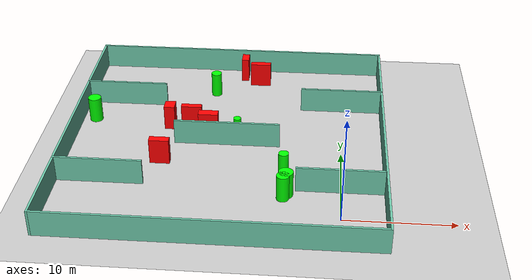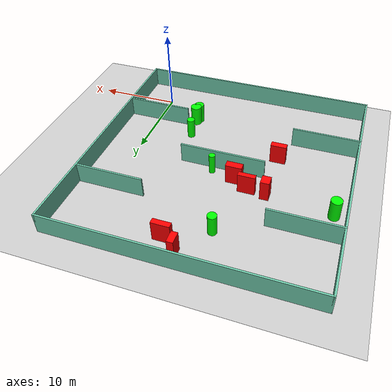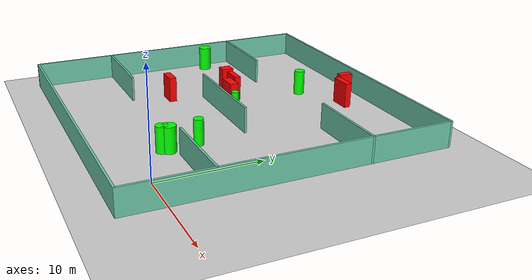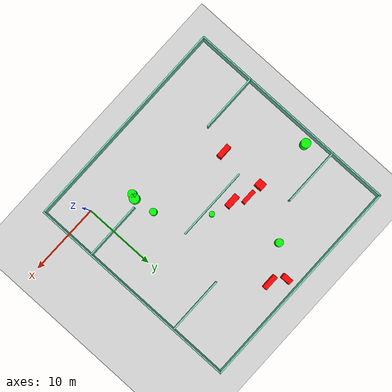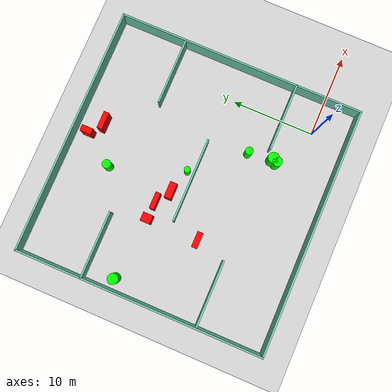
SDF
<sdf version="1.7">
 <world name="default">
  <light name="sun" type="directional">
   <pose>0 0 10 0 -0 0</pose>
   <diffuse>0.8 0.8 0.8 1</diffuse>
   <specular>0.2 0.2 0.2 1</specular>
   <attenuation>
    <range>1000</range>
    <constant>0.9</constant>
    <linear>0.01</linear>
    <quadratic>0.001</quadratic>
   </attenuation>
   <direction>-0.5 0.1 -0.9</direction>
   <spot><inner_angle>0</inner_angle><outer_angle>0</outer_angle><falloff>0</falloff></spot>
  </light>
  <model name="ground_plane">
   <static>1</static>
   <link name="link">
    <collision name="collision">
     <geometry><plane><normal>0 0 1</normal><size>100 100</size></plane></geometry>
     <surface>
      <contact><collide_bitmask>65535</collide_bitmask></contact>
      <friction><ode><mu>100</mu><mu2>50</mu2></ode></friction>
     </surface>
    </collision>
    <visual name="visual">
     <cast_shadows>0</cast_shadows>
     <geometry><plane><normal>0 0 1</normal><size>100 100</size></plane></geometry>
     <material>
      <script><uri>file://media/materials/scripts/gazebo.material</uri><name>Gazebo/Grey</name></script>
     </material>
    </visual>
   </link>
  </model>
  <gravity>0 0 -9.8</gravity>
  <magnetic_field>6e-06 2.3e-05 -4.2e-05</magnetic_field>
  <atmosphere type="adiabatic"/>
  <physics type="ode">
   <max_step_size>0.001</max_step_size>
   <real_time_factor>1</real_time_factor>
   <real_time_update_rate>1000</real_time_update_rate>
  </physics>
  <scene><ambient>0.4 0.4 0.4 1</ambient><background>0.7 0.7 0.7 1</background><shadows>1</shadows></scene>
  <spherical_coordinates>
   <surface_model>EARTH_WGS84</surface_model>
   <latitude_deg>0</latitude_deg>
   <longitude_deg>0</longitude_deg>
   <elevation>0</elevation>
   <heading_deg>0</heading_deg>
  </spherical_coordinates>
  <model name="my_base_walls">
   <link name="Wall_10">
    <collision name="Wall_10_Collision">
     <geometry><box><size>8.2 0.2 2.5</size></box></geometry>
     <pose>0 0 1.25 0 -0 0</pose>
    </collision>
    <visual name="Wall_10_Visual">
     <pose>0 0 1.25 0 -0 0</pose>
     <geometry><box><size>8.2 0.2 2.5</size></box></geometry>
     <material>
      <script><uri>file://media/materials/scripts/gazebo.material</uri><name>Gazebo/Grey</name></script>
      <ambient>0.435294 0.796078 0.67451 1</ambient>
     </material>
     <meta><layer>0</layer></meta>
    </visual>
    <pose>-11 -7 0 0 -0 0</pose>
   </link>
   <link name="Wall_12">
    <collision name="Wall_12_Collision">
     <geometry><box><size>8.2 0.2 2.5</size></box></geometry>
     <pose>0 0 1.25 0 -0 0</pose>
    </collision>
    <visual name="Wall_12_Visual">
     <pose>0 0 1.25 0 -0 0</pose>
     <geometry><box><size>8.2 0.2 2.5</size></box></geometry>
     <material>
      <script><uri>file://media/materials/scripts/gazebo.material</uri><name>Gazebo/Grey</name></script>
      <ambient>0.435294 0.796078 0.67451 1</ambient>
     </material>
     <meta><layer>0</layer></meta>
    </visual>
    <pose>-11 7 0 0 -0 0</pose>
   </link>
   <link name="Wall_14">
    <collision name="Wall_14_Collision">
     <geometry><box><size>8.2 0.2 2.5</size></box></geometry>
     <pose>0 0 1.25 0 -0 0</pose>
    </collision>
    <visual name="Wall_14_Visual">
     <pose>0 0 1.25 0 -0 0</pose>
     <geometry><box><size>8.2 0.2 2.5</size></box></geometry>
     <material>
      <script><uri>file://media/materials/scripts/gazebo.material</uri><name>Gazebo/Grey</name></script>
      <ambient>0.435294 0.796078 0.67451 1</ambient>
     </material>
     <meta><layer>0</layer></meta>
    </visual>
    <pose>11 7 0 0 -0 3.14159</pose>
   </link>
   <link name="Wall_16">
    <collision name="Wall_16_Collision">
     <geometry><box><size>10.2 0.2 2.5</size></box></geometry>
     <pose>0 0 1.25 0 -0 0</pose>
    </collision>
    <visual name="Wall_16_Visual">
     <pose>0 0 1.25 0 -0 0</pose>
     <geometry><box><size>10.2 0.2 2.5</size></box></geometry>
     <material>
      <script><uri>file://media/materials/scripts/gazebo.material</uri><name>Gazebo/Grey</name></script>
      <ambient>0.435294 0.796078 0.67451 1</ambient>
     </material>
     <meta><layer>0</layer></meta>
    </visual>
    <pose>0 0 0 0 -0 3.14159</pose>
   </link>
   <link name="Wall_2">
    <collision name="Wall_2_Collision">
     <geometry><box><size>30.2 0.2 2.5</size></box></geometry>
     <pose>0 0 1.25 0 -0 0</pose>
    </collision>
    <visual name="Wall_2_Visual">
     <pose>0 0 1.25 0 -0 0</pose>
     <geometry><box><size>30.2 0.2 2.5</size></box></geometry>
     <material>
      <script><uri>file://media/materials/scripts/gazebo.material</uri><name>Gazebo/Grey</name></script>
      <ambient>0.435294 0.796078 0.67451 1</ambient>
     </material>
     <meta><layer>0</layer></meta>
    </visual>
    <pose>0 -15 0 0 -0 3.14159</pose>
   </link>
   <link name="Wall_3">
    <collision name="Wall_3_Collision">
     <geometry><box><size>30.2 0.2 2.5</size></box></geometry>
     <pose>0 0 1.25 0 -0 0</pose>
    </collision>
    <visual name="Wall_3_Visual">
     <pose>0 0 1.25 0 -0 0</pose>
     <geometry><box><size>30.2 0.2 2.5</size></box></geometry>
     <material>
      <script><uri>file://media/materials/scripts/gazebo.material</uri><name>Gazebo/Grey</name></script>
      <ambient>0.435294 0.796078 0.67451 1</ambient>
     </material>
     <meta><layer>0</layer></meta>
    </visual>
    <pose>-15 0 0 0 -0 1.5708</pose>
   </link>
   <link name="Wall_4">
    <collision name="Wall_4_Collision">
     <geometry><box><size>30.2 0.2 2.5</size></box></geometry>
     <pose>0 0 1.25 0 -0 0</pose>
    </collision>
    <visual name="Wall_4_Visual">
     <pose>0 0 1.25 0 -0 0</pose>
     <geometry><box><size>30.2 0.2 2.5</size></box></geometry>
     <material>
      <script><uri>file://media/materials/scripts/gazebo.material</uri><name>Gazebo/Grey</name></script>
      <ambient>0.435294 0.796078 0.67451 1</ambient>
     </material>
     <meta><layer>0</layer></meta>
    </visual>
    <pose>0 15 0 0 -0 0</pose>
   </link>
   <link name="Wall_6">
    <collision name="Wall_6_Collision">
     <geometry><box><size>30.2 0.2 2.5</size></box></geometry>
     <pose>0 0 1.25 0 -0 0</pose>
    </collision>
    <visual name="Wall_6_Visual">
     <pose>0 0 1.25 0 -0 0</pose>
     <geometry><box><size>30.2 0.2 2.5</size></box></geometry>
     <material>
      <script><uri>file://media/materials/scripts/gazebo.material</uri><name>Gazebo/Grey</name></script>
      <ambient>0.435294 0.796078 0.67451 1</ambient>
     </material>
     <meta><layer>0</layer></meta>
    </visual>
    <pose>15 0 0 0 -0 1.5708</pose>
   </link>
   <link name="Wall_8">
    <collision name="Wall_8_Collision">
     <geometry><box><size>8.2 0.2 2.5</size></box></geometry>
     <pose>0 0 1.25 0 -0 0</pose>
    </collision>
    <visual name="Wall_8_Visual">
     <pose>0 0 1.25 0 -0 0</pose>
     <geometry><box><size>8.2 0.2 2.5</size></box></geometry>
     <material>
      <script><uri>file://media/materials/scripts/gazebo.material</uri><name>Gazebo/Grey</name></script>
      <ambient>0.435294 0.796078 0.67451 1</ambient>
     </material>
     <meta><layer>0</layer></meta>
    </visual>
    <pose>11 -7 0 0 -0 3.14159</pose>
   </link>
   <static>1</static>
   <pose>-11 11 0 0 -0 0</pose>
  </model>
  <model name="cylinder1">
   <static>1</static>
   <link name="link">
    <inertial>
     <mass>1</mass>
     <inertia><ixx>0.5</ixx><ixy>0</ixy><ixz>0</ixz><iyy>0.5</iyy><iyz>0</iyz><izz>1</izz></inertia>
    </inertial>
    <collision name="collision">
     <geometry><cylinder><radius>0.6663168805476418</radius><length>2.5</length></cylinder></geometry>
    </collision>
    <visual name="visual">
     <geometry><cylinder><radius>0.6663168805476418</radius><length>2.5</length></cylinder></geometry>
     <material>
      <ambient>0 1 0 1</ambient>
      <diffuse>0 1 0 1</diffuse>
      <specular>0.1 0.1 0.1 1</specular>
      <emissive>0 0 0 0</emissive>
     </material>
    </visual>
   </link>
   <pose>-4.918134223908204 3.263608286651835 1.25 0 0 0</pose>
  </model>
  <model name="cylinder2">
   <static>1</static>
   <link name="link">
    <inertial>
     <mass>1</mass>
     <inertia><ixx>0.5</ixx><ixy>0</ixy><ixz>0</ixz><iyy>0.5</iyy><iyz>0</iyz><izz>1</izz></inertia>
    </inertial>
    <collision name="collision">
     <geometry><cylinder><radius>0.5843625810009649</radius><length>2.5</length></cylinder></geometry>
    </collision>
    <visual name="visual">
     <geometry><cylinder><radius>0.5843625810009649</radius><length>2.5</length></cylinder></geometry>
     <material>
      <ambient>0 1 0 1</ambient>
      <diffuse>0 1 0 1</diffuse>
      <specular>0.1 0.1 0.1 1</specular>
      <emissive>0 0 0 0</emissive>
     </material>
    </visual>
   </link>
   <pose>-5.155733701915022 2.701021524869957 1.25 0 0 0</pose>
  </model>
  <model name="cylinder3">
   <static>1</static>
   <link name="link">
    <inertial>
     <mass>1</mass>
     <inertia><ixx>0.5</ixx><ixy>0</ixy><ixz>0</ixz><iyy>0.5</iyy><iyz>0</iyz><izz>1</izz></inertia>
    </inertial>
    <collision name="collision">
     <geometry><cylinder><radius>0.5218208821092749</radius><length>2.5</length></cylinder></geometry>
    </collision>
    <visual name="visual">
     <geometry><cylinder><radius>0.5218208821092749</radius><length>2.5</length></cylinder></geometry>
     <material>
      <ambient>0 1 0 1</ambient>
      <diffuse>0 1 0 1</diffuse>
      <specular>0.1 0.1 0.1 1</specular>
      <emissive>0 0 0 0</emissive>
     </material>
    </visual>
   </link>
   <pose>-13.070138107066288 20.584232721863344 1.25 0 0 0</pose>
  </model>
  <model name="cylinder4">
   <static>1</static>
   <link name="link">
    <inertial>
     <mass>1</mass>
     <inertia><ixx>0.5</ixx><ixy>0</ixy><ixz>0</ixz><iyy>0.5</iyy><iyz>0</iyz><izz>1</izz></inertia>
    </inertial>
    <collision name="collision">
     <geometry><cylinder><radius>0.47039971694904403</radius><length>2.5</length></cylinder></geometry>
    </collision>
    <visual name="visual">
     <geometry><cylinder><radius>0.47039971694904403</radius><length>2.5</length></cylinder></geometry>
     <material>
      <ambient>0 1 0 1</ambient>
      <diffuse>0 1 0 1</diffuse>
      <specular>0.1 0.1 0.1 1</specular>
      <emissive>0 0 0 0</emissive>
     </material>
    </visual>
   </link>
   <pose>-5.2797449747721465 6.149358681977983 1.25 0 0 0</pose>
  </model>
  <model name="cylinder5">
   <static>1</static>
   <link name="link">
    <inertial>
     <mass>1</mass>
     <inertia><ixx>0.5</ixx><ixy>0</ixy><ixz>0</ixz><iyy>0.5</iyy><iyz>0</iyz><izz>1</izz></inertia>
    </inertial>
    <collision name="collision">
     <geometry><cylinder><radius>0.3663839702693539</radius><length>2.5</length></cylinder></geometry>
    </collision>
    <visual name="visual">
     <geometry><cylinder><radius>0.3663839702693539</radius><length>2.5</length></cylinder></geometry>
     <material>
      <ambient>0 1 0 1</ambient>
      <diffuse>0 1 0 1</diffuse>
      <specular>0.1 0.1 0.1 1</specular>
      <emissive>0 0 0 0</emissive>
     </material>
    </visual>
   </link>
   <pose>-10.04425713684865 11.840809439748416 1.25 0 0 0</pose>
  </model>
  <model name="cylinder6">
   <static>1</static>
   <link name="link">
    <inertial>
     <mass>1</mass>
     <inertia><ixx>0.5</ixx><ixy>0</ixy><ixz>0</ixz><iyy>0.5</iyy><iyz>0</iyz><izz>1</izz></inertia>
    </inertial>
    <collision name="collision">
     <geometry><cylinder><radius>0.6424250641443677</radius><length>2.5</length></cylinder></geometry>
    </collision>
    <visual name="visual">
     <geometry><cylinder><radius>0.6424250641443677</radius><length>2.5</length></cylinder></geometry>
     <material>
      <ambient>0 1 0 1</ambient>
      <diffuse>0 1 0 1</diffuse>
      <specular>0.1 0.1 0.1 1</specular>
      <emissive>0 0 0 0</emissive>
     </material>
    </visual>
   </link>
   <pose>-24.647321706572374 14.643339686053316 1.25 0 0 0</pose>
  </model>
  <model name="box1">
   <static>1</static>
   <link name="link">
    <inertial>
     <mass>1</mass>
     <inertia><ixx>0.083</ixx><ixy>0</ixy><ixz>0</ixz><iyy>0.083</iyy><iyz>0</iyz><izz>0.083</izz></inertia>
    </inertial>
    <collision name="collision">
     <geometry><box><size>2.0847182685409766 0.6261672505833762 2.5</size></box></geometry>
    </collision>
    <visual name="visual">
     <geometry><box><size>2.0847182685409766 0.6261672505833762 2.5</size></box></geometry>
     <material>
      <ambient>1 0 0 1</ambient>
      <diffuse>1 0 0 1</diffuse>
      <specular>0.1 0.1 0.1 1</specular>
      <emissive>0 0 0 0</emissive>
     </material>
    </visual>
    <sensor name="my_contact" type="contact">
     <contact><collision>box_collision</collision><topic>__default_topic__</topic></contact>
    </sensor>
   </link>
   <pose>-8.589920861682371 23.04347778346548 1.25 0 0 0</pose>
  </model>
  <model name="box2">
   <static>1</static>
   <link name="link">
    <inertial>
     <mass>1</mass>
     <inertia><ixx>0.083</ixx><ixy>0</ixy><ixz>0</ixz><iyy>0.083</iyy><iyz>0</iyz><izz>0.083</izz></inertia>
    </inertial>
    <collision name="collision">
     <geometry><box><size>1.034800059925288 1.1865891252658207 2.5</size></box></geometry>
    </collision>
    <visual name="visual">
     <geometry><box><size>1.034800059925288 1.1865891252658207 2.5</size></box></geometry>
     <material>
      <ambient>1 0 0 1</ambient>
      <diffuse>1 0 0 1</diffuse>
      <specular>0.1 0.1 0.1 1</specular>
      <emissive>0 0 0 0</emissive>
     </material>
    </visual>
    <sensor name="my_contact" type="contact">
     <contact><collision>box_collision</collision><topic>__default_topic__</topic></contact>
    </sensor>
   </link>
   <pose>-16.928971144091825 13.90427401705011 1.25 0 0 0</pose>
  </model>
  <model name="box3">
   <static>1</static>
   <link name="link">
    <inertial>
     <mass>1</mass>
     <inertia><ixx>0.083</ixx><ixy>0</ixy><ixz>0</ixz><iyy>0.083</iyy><iyz>0</iyz><izz>0.083</izz></inertia>
    </inertial>
    <collision name="collision">
     <geometry><box><size>0.7320387969039501 1.3566722780803508 2.5</size></box></geometry>
    </collision>
    <visual name="visual">
     <geometry><box><size>0.7320387969039501 1.3566722780803508 2.5</size></box></geometry>
     <material>
      <ambient>1 0 0 1</ambient>
      <diffuse>1 0 0 1</diffuse>
      <specular>0.1 0.1 0.1 1</specular>
      <emissive>0 0 0 0</emissive>
     </material>
    </visual>
    <sensor name="my_contact" type="contact">
     <contact><collision>box_collision</collision><topic>__default_topic__</topic></contact>
    </sensor>
   </link>
   <pose>-10.324291031534164 24.342193304446067 1.25 0 0 0</pose>
  </model>
  <model name="box4">
   <static>1</static>
   <link name="link">
    <inertial>
     <mass>1</mass>
     <inertia><ixx>0.083</ixx><ixy>0</ixy><ixz>0</ixz><iyy>0.083</iyy><iyz>0</iyz><izz>0.083</izz></inertia>
    </inertial>
    <collision name="collision">
     <geometry><box><size>1.8796354036225518 0.7158550197358562 2.5</size></box></geometry>
    </collision>
    <visual name="visual">
     <geometry><box><size>1.8796354036225518 0.7158550197358562 2.5</size></box></geometry>
     <material>
      <ambient>1 0 0 1</ambient>
      <diffuse>1 0 0 1</diffuse>
      <specular>0.1 0.1 0.1 1</specular>
      <emissive>0 0 0 0</emissive>
     </material>
    </visual>
    <sensor name="my_contact" type="contact">
     <contact><collision>box_collision</collision><topic>__default_topic__</topic></contact>
    </sensor>
   </link>
   <pose>-16.95321954222598 7.644008771439868 1.25 0 0 0</pose>
  </model>
  <model name="box5">
   <static>1</static>
   <link name="link">
    <inertial>
     <mass>1</mass>
     <inertia><ixx>0.083</ixx><ixy>0</ixy><ixz>0</ixz><iyy>0.083</iyy><iyz>0</iyz><izz>0.083</izz></inertia>
    </inertial>
    <collision name="collision">
     <geometry><box><size>2.0150397859541487 0.5748182438591369 2.5</size></box></geometry>
    </collision>
    <visual name="visual">
     <geometry><box><size>2.0150397859541487 0.5748182438591369 2.5</size></box></geometry>
     <material>
      <ambient>1 0 0 1</ambient>
      <diffuse>1 0 0 1</diffuse>
      <specular>0.1 0.1 0.1 1</specular>
      <emissive>0 0 0 0</emissive>
     </material>
    </visual>
    <sensor name="my_contact" type="contact">
     <contact><collision>box_collision</collision><topic>__default_topic__</topic></contact>
    </sensor>
   </link>
   <pose>-14.762499461708352 13.82999257916261 1.25 0 0 0</pose>
  </model>
  <model name="box6">
   <static>1</static>
   <link name="link">
    <inertial>
     <mass>1</mass>
     <inertia><ixx>0.083</ixx><ixy>0</ixy><ixz>0</ixz><iyy>0.083</iyy><iyz>0</iyz><izz>0.083</izz></inertia>
    </inertial>
    <collision name="collision">
     <geometry><box><size>1.9135005223471078 0.8485453848891692 2.5</size></box></geometry>
    </collision>
    <visual name="visual">
     <geometry><box><size>1.9135005223471078 0.8485453848891692 2.5</size></box></geometry>
     <material>
      <ambient>1 0 0 1</ambient>
      <diffuse>1 0 0 1</diffuse>
      <specular>0.1 0.1 0.1 1</specular>
      <emissive>0 0 0 0</emissive>
     </material>
    </visual>
    <sensor name="my_contact" type="contact">
     <contact><collision>box_collision</collision><topic>__default_topic__</topic></contact>
    </sensor>
   </link>
   <pose>-12.973025742702019 12.645938318900727 1.25 0 0 0</pose>
  </model>
 </world>
</sdf>
